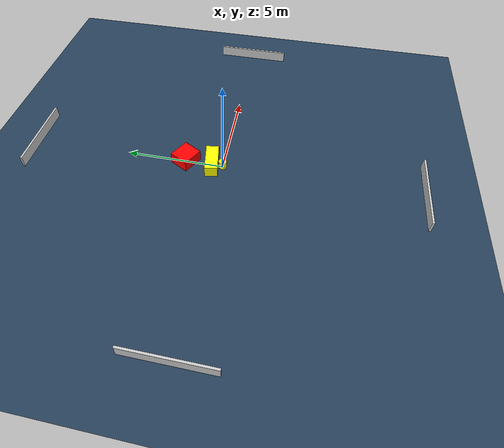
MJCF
<?xml version="1.0" ?>
<mujoco model="generated_environment">
  <option timestep="0.01" integrator="RK4" cone="elliptic"/>
  <default>
    <geom density="1"/>
  </default>
  <asset>
    <texture builtin="gradient" height="3072" name="skybox" rgb1="0.3 0.5 0.7" rgb2="0 0 0" type="skybox" width="512"/>
    <texture builtin="checker" height="300" name="groundplane" rgb1="0.2 0.3 0.4" rgb2="0.1 0.2 0.3" type="2d" width="300"/>
    <material name="groundplane" reflectance="0.2" texrepeat="5 5" texture="groundplane"/>
  </asset>
  <worldbody>
    <light dir="0 0 -1" directional="true" pos="0 0 1.5"/>
    <geom condim="3" friction="0.5 0.005 0.001" material="groundplane" name="floor" pos="0 0 0" size="0 0 0.05" type="plane"/>
    <body name="walls">
      <geom name="wall_1" condim="4" pos="-10.0 0.0 0.3" rgba="0.800000011920929 0.800000011920929 0.800000011920929 1.0" size="0.05 2.0 0.3" type="box"/>
      <geom name="wall_2" condim="4" pos="10.0 0.0 0.3" rgba="0.800000011920929 0.800000011920929 0.800000011920929 1.0" size="0.05 2.0 0.3" type="box"/>
      <geom name="wall_3" condim="4" pos="0.0 -10.0 0.3" rgba="0.800000011920929 0.800000011920929 0.800000011920929 1.0" size="2.0 0.05 0.3" type="box"/>
      <geom name="wall_4" condim="4" pos="0.0 10.0 0.3" rgba="0.800000011920929 0.800000011920929 0.800000011920929 1.0" size="2.0 0.05 0.3" type="box"/>
    </body>
    <body name="robot">
      <joint name="joint_x" type="slide" pos="0 0 0" axis="1 0 0"/>
      <joint name="joint_y" type="slide" pos="0 0 0" axis="0 1 0"/>
      <geom name="robot" type="cylinder" pos="0.0 0.0 0.2" size="0.2 0.2 0.0" mass="5.0" friction="1.0 0.005 0.0001" condim="4" rgba="1.0 1.0 0.0 1.0"/>
    </body>
    <body name="obstacle_1_movable">
      <geom name="obstacle_1_movable" condim="4" pos="0.01941108339435579 0.5656972704946452 0.3" euler="0 0 188.9256636293763" friction="0.0 0.005 0.001" rgba="1.0 1.0 0.0 1.0" size="0.775076433701881 0.32499655034788777 0.3" type="box" mass="0.1"/>
      <joint type="free"/>
    </body>
    <body name="obstacle_2_static">
      <geom name="obstacle_2_static" condim="4" pos="0.04922585197799844 1.9372048410072398 0.3" euler="0 0 150.95197887690125" friction="0.0 0.005 0.001" rgba="1.0 0.0 0.0 1.0" size="0.5539870952549204 0.5055460372579853 0.3" type="box"/>
    </body>
  </worldbody>
  <actuator>
    <motor name="actuator_x" joint="joint_x" gear="1" ctrlrange="-1 1"/>
    <motor name="actuator_y" joint="joint_y" gear="1" ctrlrange="-1 1"/>
  </actuator>
</mujoco>
